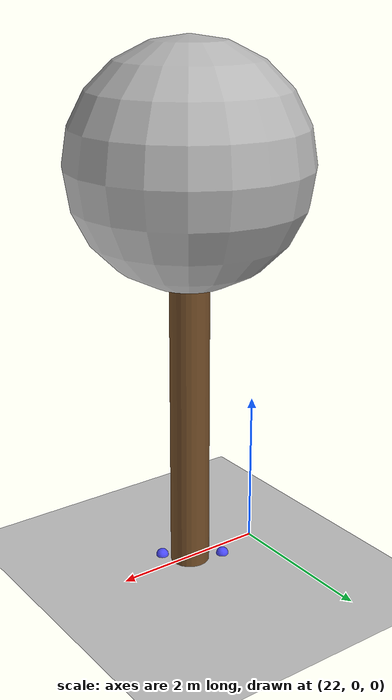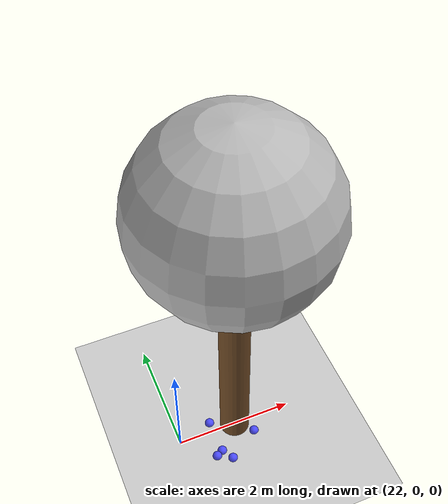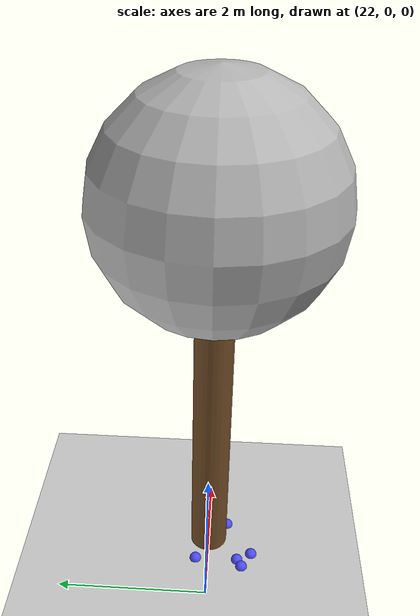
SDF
<sdf version="1.7">
 <world name="default">
  <model name="ground_plane">
   <static>1</static>
   <link name="link">
    <collision name="collision">
     <geometry><plane><normal>0 0 1</normal><size>100 100</size></plane></geometry>
     <surface>
      <contact><collide_bitmask>65535</collide_bitmask></contact>
      <friction><ode><mu>100</mu><mu2>50</mu2></ode></friction>
     </surface>
    </collision>
    <visual name="visual">
     <cast_shadows>0</cast_shadows>
     <geometry><plane><normal>0 0 1</normal><size>100 100</size></plane></geometry>
     <material>
      <script><uri>file://media/materials/scripts/gazebo.material</uri><name>Gazebo/Grey</name></script>
     </material>
    </visual>
   </link>
  </model>
  <model name="tree_simple_99">
   <static>1</static>
   <link name="link">
    <pose>0 0 0.1 0 -0 0</pose>
    <inertial>
     <mass>666</mass>
     <inertia>
      <ixx>0.0861167</ixx>
      <ixy>0</ixy>
      <ixz>0</ixz>
      <iyy>0.0861167</iyy>
      <iyz>0</iyz>
      <izz>0.0861167</izz>
     </inertia>
    </inertial>
    <collision name="collision_trunk">
     <pose>0 0 2 0 -0 0</pose>
     <geometry><cylinder><radius>0.25</radius><length>4</length></cylinder></geometry>
     <surface>
      <contact>
       <poissons_ratio>0.347</poissons_ratio>
       <elastic_modulus>8.8e+09</elastic_modulus>
       <ode><kp>100000</kp><kd>100</kd><max_vel>100</max_vel><min_depth>0.001</min_depth></ode>
      </contact>
      <friction>
       <torsional>
        <coefficient>1</coefficient>
        <use_patch_radius>0</use_patch_radius>
        <surface_radius>0.01</surface_radius>
       </torsional>
      </friction>
     </surface>
    </collision>
    <collision name="collision_treetop">
     <pose>0 0 5.2 0 -0 0</pose>
     <geometry><sphere><radius>1.5</radius></sphere></geometry>
     <surface>
      <contact>
       <poissons_ratio>0.347</poissons_ratio>
       <elastic_modulus>8.8e+09</elastic_modulus>
       <ode><kp>100000</kp><kd>100</kd><max_vel>100</max_vel><min_depth>0.001</min_depth></ode>
      </contact>
      <friction>
       <torsional>
        <coefficient>1</coefficient>
        <use_patch_radius>0</use_patch_radius>
        <surface_radius>0.01</surface_radius>
       </torsional>
      </friction>
     </surface>
    </collision>
    <visual name="trunk">
     <pose>0 0 2 0 -0 0</pose>
     <geometry><cylinder><radius>0.25</radius><length>4</length></cylinder></geometry>
     <material>
      <script>
       <uri>model://tree_simple/scripts</uri>
       <uri>model://tree_simple/materials/textures</uri>
       <name>TreeSimple/Trunk</name>
      </script>
     </material>
    </visual>
    <visual name="treetop">
     <pose>0 0 5.2 0 -0 0</pose>
     <geometry><sphere><radius>1.5</radius></sphere></geometry>
     <material>
      <script>
       <uri>model://tree_simple/scripts</uri>
       <uri>model://tree_simple/materials/textures</uri>
       <name>TreeSimple/Treetop</name>
      </script>
     </material>
    </visual>
   </link>
   <pose>23 0 -0.1 0 -0 0</pose>
  </model>
  <model name="seed_blue_216">
   <link name="link">
    <inertial>
     <mass>1</mass>
     <inertia><ixx>0.1</ixx><ixy>0</ixy><ixz>0</ixz><iyy>0.1</iyy><iyz>0</iyz><izz>0.1</izz></inertia>
    </inertial>
    <visual name="visual">
     <geometry><sphere><radius>0.08</radius></sphere></geometry>
     <material>
      <script><name>Gazebo/Grey</name><uri>file://media/materials/scripts/gazebo.material</uri></script>
      <shader type="pixel"><normal_map>__default__</normal_map></shader>
      <ambient>0.3 0.3 1 1</ambient>
      <diffuse>0.7 0.7 0.7 1</diffuse>
      <specular>0.01 0.01 0.01 1</specular>
      <emissive>0 0 0 1</emissive>
     </material>
    </visual>
    <collision name="collision">
     <geometry><sphere><radius>0.0005</radius></sphere></geometry>
     <surface>
      <friction>
       <ode><mu>1</mu><mu2>1</mu2><fdir1>0 0 0</fdir1><slip1>0</slip1><slip2>0</slip2></ode>
       <torsional>
        <coefficient>1</coefficient>
        <patch_radius>0</patch_radius>
        <surface_radius>0</surface_radius>
        <use_patch_radius>1</use_patch_radius>
        <ode><slip>0</slip></ode>
       </torsional>
      </friction>
      <bounce><restitution_coefficient>0</restitution_coefficient><threshold>1e+06</threshold></bounce>
      <contact>
       <collide_without_contact>0</collide_without_contact>
       <collide_without_contact_bitmask>1</collide_without_contact_bitmask>
       <collide_bitmask>1</collide_bitmask>
       <ode>
        <soft_cfm>0</soft_cfm>
        <soft_erp>0.2</soft_erp>
        <kp>1e+13</kp>
        <kd>1</kd>
        <max_vel>0.01</max_vel>
        <min_depth>0</min_depth>
       </ode>
       <bullet>
        <split_impulse>1</split_impulse>
        <split_impulse_penetration_threshold>-0.01</split_impulse_penetration_threshold>
        <soft_cfm>0</soft_cfm>
        <soft_erp>0.2</soft_erp>
        <kp>1e+13</kp>
        <kd>1</kd>
       </bullet>
      </contact>
     </surface>
    </collision>
   </link>
   <static>0</static>
   <pose>23.2602 -0.260806 0.0005 0 -0 0</pose>
  </model>
  <model name="seed_blue_217">
   <link name="link">
    <inertial>
     <mass>1</mass>
     <inertia><ixx>0.1</ixx><ixy>0</ixy><ixz>0</ixz><iyy>0.1</iyy><iyz>0</iyz><izz>0.1</izz></inertia>
    </inertial>
    <visual name="visual">
     <geometry><sphere><radius>0.08</radius></sphere></geometry>
     <material>
      <script><name>Gazebo/Grey</name><uri>file://media/materials/scripts/gazebo.material</uri></script>
      <shader type="pixel"><normal_map>__default__</normal_map></shader>
      <ambient>0.3 0.3 1 1</ambient>
      <diffuse>0.7 0.7 0.7 1</diffuse>
      <specular>0.01 0.01 0.01 1</specular>
      <emissive>0 0 0 1</emissive>
     </material>
    </visual>
    <collision name="collision">
     <geometry><sphere><radius>0.0005</radius></sphere></geometry>
     <surface>
      <friction>
       <ode><mu>1</mu><mu2>1</mu2><fdir1>0 0 0</fdir1><slip1>0</slip1><slip2>0</slip2></ode>
       <torsional>
        <coefficient>1</coefficient>
        <patch_radius>0</patch_radius>
        <surface_radius>0</surface_radius>
        <use_patch_radius>1</use_patch_radius>
        <ode><slip>0</slip></ode>
       </torsional>
      </friction>
      <bounce><restitution_coefficient>0</restitution_coefficient><threshold>1e+06</threshold></bounce>
      <contact>
       <collide_without_contact>0</collide_without_contact>
       <collide_without_contact_bitmask>1</collide_without_contact_bitmask>
       <collide_bitmask>1</collide_bitmask>
       <ode>
        <soft_cfm>0</soft_cfm>
        <soft_erp>0.2</soft_erp>
        <kp>1e+13</kp>
        <kd>1</kd>
        <max_vel>0.01</max_vel>
        <min_depth>0</min_depth>
       </ode>
       <bullet>
        <split_impulse>1</split_impulse>
        <split_impulse_penetration_threshold>-0.01</split_impulse_penetration_threshold>
        <soft_cfm>0</soft_cfm>
        <soft_erp>0.2</soft_erp>
        <kp>1e+13</kp>
        <kd>1</kd>
       </bullet>
      </contact>
     </surface>
    </collision>
   </link>
   <static>0</static>
   <pose>22.4863 -0.473641 0.0005 0 -0 0</pose>
  </model>
  <model name="seed_blue_220">
   <link name="link">
    <inertial>
     <mass>1</mass>
     <inertia><ixx>0.1</ixx><ixy>0</ixy><ixz>0</ixz><iyy>0.1</iyy><iyz>0</iyz><izz>0.1</izz></inertia>
    </inertial>
    <visual name="visual">
     <geometry><sphere><radius>0.08</radius></sphere></geometry>
     <material>
      <script><name>Gazebo/Grey</name><uri>file://media/materials/scripts/gazebo.material</uri></script>
      <shader type="pixel"><normal_map>__default__</normal_map></shader>
      <ambient>0.3 0.3 1 1</ambient>
      <diffuse>0.7 0.7 0.7 1</diffuse>
      <specular>0.01 0.01 0.01 1</specular>
      <emissive>0 0 0 1</emissive>
     </material>
    </visual>
    <collision name="collision">
     <geometry><sphere><radius>0.0005</radius></sphere></geometry>
     <surface>
      <friction>
       <ode><mu>1</mu><mu2>1</mu2><fdir1>0 0 0</fdir1><slip1>0</slip1><slip2>0</slip2></ode>
       <torsional>
        <coefficient>1</coefficient>
        <patch_radius>0</patch_radius>
        <surface_radius>0</surface_radius>
        <use_patch_radius>1</use_patch_radius>
        <ode><slip>0</slip></ode>
       </torsional>
      </friction>
      <bounce><restitution_coefficient>0</restitution_coefficient><threshold>1e+06</threshold></bounce>
      <contact>
       <collide_without_contact>0</collide_without_contact>
       <collide_without_contact_bitmask>1</collide_without_contact_bitmask>
       <collide_bitmask>1</collide_bitmask>
       <ode>
        <soft_cfm>0</soft_cfm>
        <soft_erp>0.2</soft_erp>
        <kp>1e+13</kp>
        <kd>1</kd>
        <max_vel>0.01</max_vel>
        <min_depth>0</min_depth>
       </ode>
       <bullet>
        <split_impulse>1</split_impulse>
        <split_impulse_penetration_threshold>-0.01</split_impulse_penetration_threshold>
        <soft_cfm>0</soft_cfm>
        <soft_erp>0.2</soft_erp>
        <kp>1e+13</kp>
        <kd>1</kd>
       </bullet>
      </contact>
     </surface>
    </collision>
   </link>
   <static>0</static>
   <pose>22.7195 -0.608877 0.0005 0 -0 0</pose>
  </model>
  <model name="seed_blue_221">
   <link name="link">
    <inertial>
     <mass>1</mass>
     <inertia><ixx>0.1</ixx><ixy>0</ixy><ixz>0</ixz><iyy>0.1</iyy><iyz>0</iyz><izz>0.1</izz></inertia>
    </inertial>
    <visual name="visual">
     <geometry><sphere><radius>0.08</radius></sphere></geometry>
     <material>
      <script><name>Gazebo/Grey</name><uri>file://media/materials/scripts/gazebo.material</uri></script>
      <shader type="pixel"><normal_map>__default__</normal_map></shader>
      <ambient>0.3 0.3 1 1</ambient>
      <diffuse>0.7 0.7 0.7 1</diffuse>
      <specular>0.01 0.01 0.01 1</specular>
      <emissive>0 0 0 1</emissive>
     </material>
    </visual>
    <collision name="collision">
     <geometry><sphere><radius>0.0005</radius></sphere></geometry>
     <surface>
      <friction>
       <ode><mu>1</mu><mu2>1</mu2><fdir1>0 0 0</fdir1><slip1>0</slip1><slip2>0</slip2></ode>
       <torsional>
        <coefficient>1</coefficient>
        <patch_radius>0</patch_radius>
        <surface_radius>0</surface_radius>
        <use_patch_radius>1</use_patch_radius>
        <ode><slip>0</slip></ode>
       </torsional>
      </friction>
      <bounce><restitution_coefficient>0</restitution_coefficient><threshold>1e+06</threshold></bounce>
      <contact>
       <collide_without_contact>0</collide_without_contact>
       <collide_without_contact_bitmask>1</collide_without_contact_bitmask>
       <collide_bitmask>1</collide_bitmask>
       <ode>
        <soft_cfm>0</soft_cfm>
        <soft_erp>0.2</soft_erp>
        <kp>1e+13</kp>
        <kd>1</kd>
        <max_vel>0.01</max_vel>
        <min_depth>0</min_depth>
       </ode>
       <bullet>
        <split_impulse>1</split_impulse>
        <split_impulse_penetration_threshold>-0.01</split_impulse_penetration_threshold>
        <soft_cfm>0</soft_cfm>
        <soft_erp>0.2</soft_erp>
        <kp>1e+13</kp>
        <kd>1</kd>
       </bullet>
      </contact>
     </surface>
    </collision>
   </link>
   <static>0</static>
   <pose>22.6022 -0.411265 0.0005 0 -0 0</pose>
  </model>
  <model name="seed_blue_222">
   <link name="link">
    <inertial>
     <mass>1</mass>
     <inertia><ixx>0.1</ixx><ixy>0</ixy><ixz>0</ixz><iyy>0.1</iyy><iyz>0</iyz><izz>0.1</izz></inertia>
    </inertial>
    <visual name="visual">
     <geometry><sphere><radius>0.08</radius></sphere></geometry>
     <material>
      <script><name>Gazebo/Grey</name><uri>file://media/materials/scripts/gazebo.material</uri></script>
      <shader type="pixel"><normal_map>__default__</normal_map></shader>
      <ambient>0.3 0.3 1 1</ambient>
      <diffuse>0.7 0.7 0.7 1</diffuse>
      <specular>0.01 0.01 0.01 1</specular>
      <emissive>0 0 0 1</emissive>
     </material>
    </visual>
    <collision name="collision">
     <geometry><sphere><radius>0.0005</radius></sphere></geometry>
     <surface>
      <friction>
       <ode><mu>1</mu><mu2>1</mu2><fdir1>0 0 0</fdir1><slip1>0</slip1><slip2>0</slip2></ode>
       <torsional>
        <coefficient>1</coefficient>
        <patch_radius>0</patch_radius>
        <surface_radius>0</surface_radius>
        <use_patch_radius>1</use_patch_radius>
        <ode><slip>0</slip></ode>
       </torsional>
      </friction>
      <bounce><restitution_coefficient>0</restitution_coefficient><threshold>1e+06</threshold></bounce>
      <contact>
       <collide_without_contact>0</collide_without_contact>
       <collide_without_contact_bitmask>1</collide_without_contact_bitmask>
       <collide_bitmask>1</collide_bitmask>
       <ode>
        <soft_cfm>0</soft_cfm>
        <soft_erp>0.2</soft_erp>
        <kp>1e+13</kp>
        <kd>1</kd>
        <max_vel>0.01</max_vel>
        <min_depth>0</min_depth>
       </ode>
       <bullet>
        <split_impulse>1</split_impulse>
        <split_impulse_penetration_threshold>-0.01</split_impulse_penetration_threshold>
        <soft_cfm>0</soft_cfm>
        <soft_erp>0.2</soft_erp>
        <kp>1e+13</kp>
        <kd>1</kd>
       </bullet>
      </contact>
     </surface>
    </collision>
   </link>
   <static>0</static>
   <pose>22.5966 0.170851 0.0005 0 -0 0</pose>
  </model>
 </world>
</sdf>
